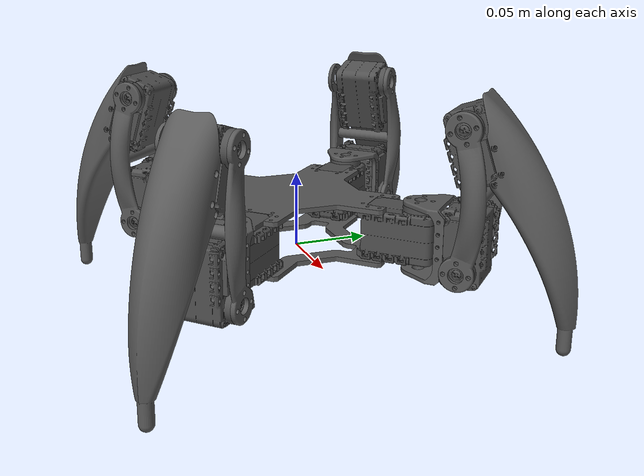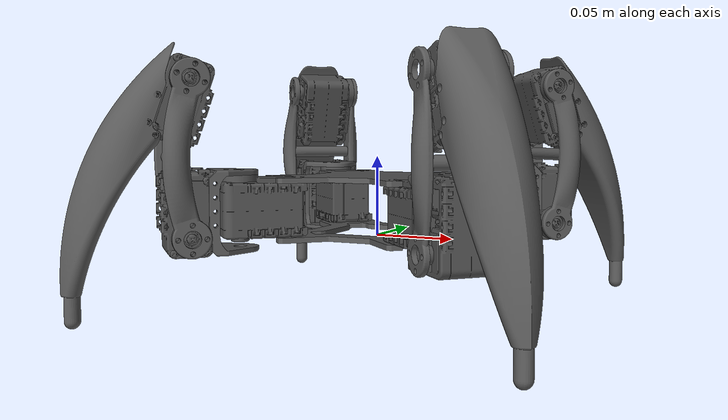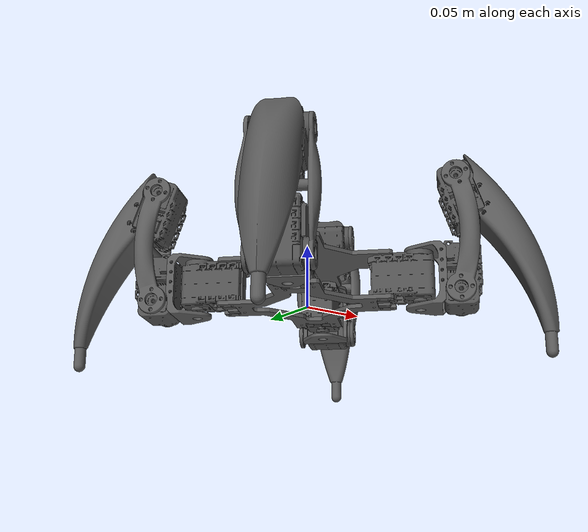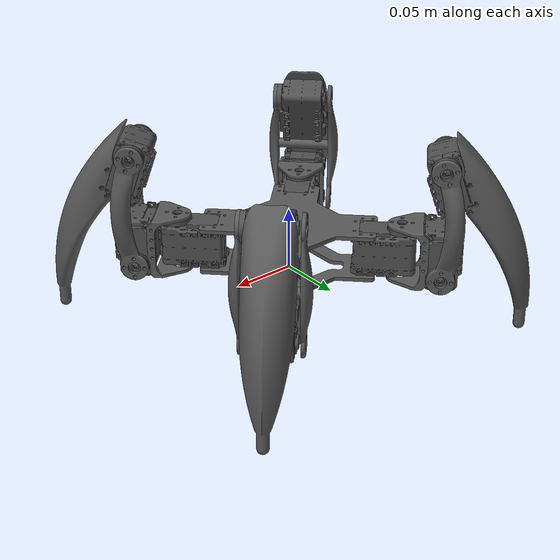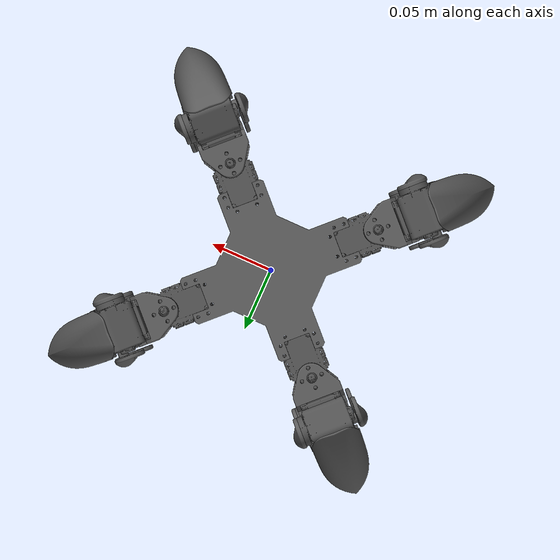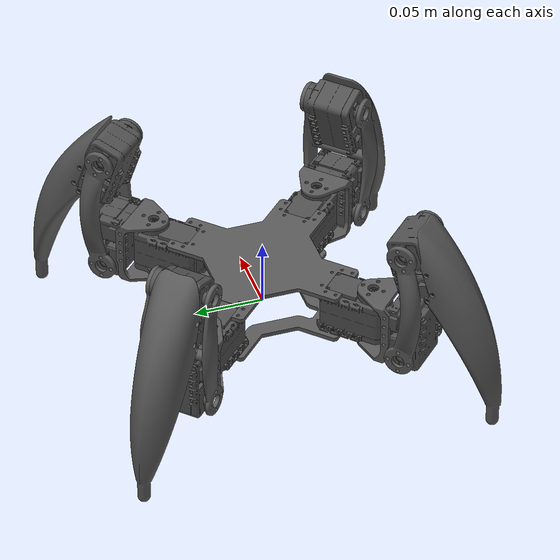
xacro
<?xml version="1.0" ?>
<robot name="quadrapod" xmlns:xacro="http://www.ros.org/wiki/xacro">

<xacro:include filename="$(find quadrapod_description)/urdf/materials.xacro" />
<xacro:include filename="$(find quadrapod_description)/urdf/quadrapod.trans" />
<xacro:include filename="$(find quadrapod_description)/urdf/quadrapod.gazebo" />

<!-- tibia tip end effector -->
<link name="tibia_eef_1"/>

<joint name="dummy_eef1" type="fixed">
    <parent link="tibia_v3_1"/>
    <child link="tibia_eef_1"/>
    <origin rpy="0 0 0" xyz="0.019893 0.043227 -0.108724"/>
</joint>

<link name="tibia_eef_2"/>

<joint name="dummy_eef2" type="fixed">
    <parent link="tibia_v3_2"/>
    <child link="tibia_eef_2"/>
    <origin rpy="0 0 0" xyz="-0.043227 0.019893 -0.108724"/>
</joint>

<link name="tibia_eef_3"/>

<joint name="dummy_eef3" type="fixed">
    <parent link="tibia_v3_3"/>
    <child link="tibia_eef_3"/>
    <origin rpy="0 0 0" xyz="0.019893 -0.043227 -0.108724"/>
</joint>

<link name="tibia_eef_4"/>

<joint name="dummy_eef4" type="fixed">
    <parent link="tibia_v3_4"/>
    <child link="tibia_eef_4"/>
    <origin rpy="0 0 0" xyz="-0.043227 -0.019893 -0.108724"/>
</joint>

<!-- end of tibia tip end effector -->

<link name="base_link">
  <inertial>
    <origin rpy="0 0 0" xyz="-3.131527398141724e-15 6.504656316614858e-17 0.0015874999999999993"/>
    <mass value="0.016210624643989514"/>
    <inertia ixx="1.8e-05" ixy="0.0" ixz="0.0" iyy="1.8e-05" iyz="-0.0" izz="3.6e-05"/>
  </inertial>
  <visual>
    <origin rpy="0 0 0" xyz="0 0 0"/>
    <geometry>
      <mesh filename="package://quadrapod_description/meshes/base_link.stl" scale="0.001 0.001 0.001"/>
    </geometry>
    <material name="powder_coat_dark_grey"/>
  </visual>
  <collision>
    <origin rpy="0 0 0" xyz="0 0 0"/>
    <geometry>
      <mesh filename="package://quadrapod_description/meshes/base_link.stl" scale="0.001 0.001 0.001"/>
    </geometry>
  </collision>
</link>

<link name="ax12a_v2_1">
  <inertial>
    <origin rpy="0 0 0" xyz="0.003358172989370682 0.02244916197825437 0.017128126001392945"/>
    <mass value="0.04556894168228744"/>
    <inertia ixx="1e-05" ixy="-3e-06" ixz="-0.0" iyy="1e-05" iyz="-0.0" izz="1.1e-05"/>
  </inertial>
  <visual>
    <origin rpy="0 0 0" xyz="-0.049405 -0.030313 -0.003175"/>
    <geometry>
      <mesh filename="package://quadrapod_description/meshes/ax12a_v2_1.stl" scale="0.001 0.001 0.001"/>
    </geometry>
    <material name="glossy_black"/>
  </visual>
  <collision>
    <origin rpy="0 0 0" xyz="-0.049405 -0.030313 -0.003175"/>
    <geometry>
      <mesh filename="package://quadrapod_description/meshes/ax12a_v2_1.stl" scale="0.001 0.001 0.001"/>
    </geometry>
  </collision>
</link>

<link name="top_plate_v3_1">
  <inertial>
    <origin rpy="0 0 0" xyz="-0.04940500000000193 -0.030313000000000093 0.0015874999999999986"/>
    <mass value="0.02791137131716288"/>
    <inertia ixx="2.2e-05" ixy="-0.0" ixz="-0.0" iyy="2.2e-05" iyz="-0.0" izz="4.3e-05"/>
  </inertial>
  <visual>
    <origin rpy="0 0 0" xyz="-0.049405 -0.030313 -0.035175"/>
    <geometry>
      <mesh filename="package://quadrapod_description/meshes/top_plate_v3_1.stl" scale="0.001 0.001 0.001"/>
    </geometry>
    <material name="powder_coat_dark_grey"/>
  </visual>
  <collision>
    <origin rpy="0 0 0" xyz="-0.049405 -0.030313 -0.035175"/>
    <geometry>
      <mesh filename="package://quadrapod_description/meshes/top_plate_v3_1.stl" scale="0.001 0.001 0.001"/>
    </geometry>
  </collision>
</link>

<link name="coxa_v3_1">
  <inertial>
    <origin rpy="0 0 0" xyz="0.006307697166824548 0.006307697166780014 -0.02156473485261959"/>
    <mass value="0.0059876100339638"/>
    <inertia ixx="3e-06" ixy="0.0" ixz="-0.0" iyy="3e-06" iyz="-0.0" izz="1e-06"/>
  </inertial>
  <visual>
    <origin rpy="0 0 0" xyz="-0.061602 -0.061602 -0.040175"/>
    <geometry>
      <mesh filename="package://quadrapod_description/meshes/coxa_v3_1.stl" scale="0.001 0.001 0.001"/>
    </geometry>
    <material name="powder_coat_dark_grey"/>
  </visual>
  <collision>
    <origin rpy="0 0 0" xyz="-0.061602 -0.061602 -0.040175"/>
    <geometry>
      <mesh filename="package://quadrapod_description/meshes/coxa_v3_1.stl" scale="0.001 0.001 0.001"/>
    </geometry>
  </collision>
</link>

<link name="ax12a_v2_2">
  <inertial>
    <origin rpy="0 0 0" xyz="-0.0009703775779082852 0.020061211330856032 0.005750862552334106"/>
    <mass value="0.04556894168228744"/>
    <inertia ixx="1.2e-05" ixy="1e-06" ixz="0.0" iyy="1.2e-05" iyz="-0.0" izz="7e-06"/>
  </inertial>
  <visual>
    <origin rpy="0 0 0" xyz="-0.08529 -0.062663 -0.01205"/>
    <geometry>
      <mesh filename="package://quadrapod_description/meshes/ax12a_v2_2.stl" scale="0.001 0.001 0.001"/>
    </geometry>
    <material name="glossy_black"/>
  </visual>
  <collision>
    <origin rpy="0 0 0" xyz="-0.08529 -0.062663 -0.01205"/>
    <geometry>
      <mesh filename="package://quadrapod_description/meshes/ax12a_v2_2.stl" scale="0.001 0.001 0.001"/>
    </geometry>
  </collision>
</link>

<link name="femur_v3_1">
  <inertial>
    <origin rpy="0 0 0" xyz="-0.010665286346567868 0.019022521708455142 0.045000612902674215"/>
    <mass value="0.017665404788512855"/>
    <inertia ixx="1.6e-05" ixy="4e-06" ixz="0.0" iyy="1.6e-05" iyz="0.0" izz="9e-06"/>
  </inertial>
  <visual>
    <origin rpy="0 0 0" xyz="-0.098372 -0.068673 -0.0053"/>
    <geometry>
      <mesh filename="package://quadrapod_description/meshes/femur_v3_1.stl" scale="0.001 0.001 0.001"/>
    </geometry>
    <material name="powder_coat_dark_grey"/>
  </visual>
  <collision>
    <origin rpy="0 0 0" xyz="-0.098372 -0.068673 -0.0053"/>
    <geometry>
      <mesh filename="package://quadrapod_description/meshes/femur_v3_1.stl" scale="0.001 0.001 0.001"/>
    </geometry>
  </collision>
</link>

<link name="ax12a_v2_3">
  <inertial>
    <origin rpy="0 0 0" xyz="-0.011246595732016501 0.016856993176747714 -0.011854636830040899"/>
    <mass value="0.04556894168228744"/>
    <inertia ixx="1.2e-05" ixy="1e-06" ixz="1e-06" iyy="1.2e-05" iyz="1e-06" izz="8e-06"/>
  </inertial>
  <visual>
    <origin rpy="0 0 0" xyz="-0.098372 -0.068673 -0.0953"/>
    <geometry>
      <mesh filename="package://quadrapod_description/meshes/ax12a_v2_3.stl" scale="0.001 0.001 0.001"/>
    </geometry>
    <material name="glossy_black"/>
  </visual>
  <collision>
    <origin rpy="0 0 0" xyz="-0.098372 -0.068673 -0.0953"/>
    <geometry>
      <mesh filename="package://quadrapod_description/meshes/ax12a_v2_3.stl" scale="0.001 0.001 0.001"/>
    </geometry>
  </collision>
</link>

<link name="tibia_v3_1">
  <inertial>
    <origin rpy="0 0 0" xyz="0.0029676224397089113 0.02630171402651535 -0.016467855089459284"/>
    <mass value="0.07868500125623075"/>
    <inertia ixx="9e-05" ixy="-5e-06" ixz="2.2e-05" iyy="9e-05" iyz="2.2e-05" izz="2.2e-05"/>
  </inertial>
  <visual>
    <origin rpy="0 0 0" xyz="-0.108278 -0.085651 -0.063699"/>
    <geometry>
      <mesh filename="package://quadrapod_description/meshes/tibia_v3_1.stl" scale="0.001 0.001 0.001"/>
    </geometry>
    <material name="powder_coat_dark_grey"/>
  </visual>
  <collision>
    <origin rpy="0 0 0" xyz="-0.108278 -0.085651 -0.063699"/>
    <geometry>
      <mesh filename="package://quadrapod_description/meshes/tibia_v3_1.stl" scale="0.001 0.001 0.001"/>
    </geometry>
  </collision>
</link>

<link name="ax12a_v2_4">
  <inertial>
    <origin rpy="0 0 0" xyz="-0.022449161978254396 0.003358172989370682 0.017128126001392973"/>
    <mass value="0.04556894168228744"/>
    <inertia ixx="1e-05" ixy="3e-06" ixz="0.0" iyy="1e-05" iyz="-0.0" izz="1.1e-05"/>
  </inertial>
  <visual>
    <origin rpy="0 0 0" xyz="0.030313 -0.049405 -0.003175"/>
    <geometry>
      <mesh filename="package://quadrapod_description/meshes/ax12a_v2_4.stl" scale="0.001 0.001 0.001"/>
    </geometry>
    <material name="glossy_black"/>
  </visual>
  <collision>
    <origin rpy="0 0 0" xyz="0.030313 -0.049405 -0.003175"/>
    <geometry>
      <mesh filename="package://quadrapod_description/meshes/ax12a_v2_4.stl" scale="0.001 0.001 0.001"/>
    </geometry>
  </collision>
</link>

<link name="coxa_v3_2">
  <inertial>
    <origin rpy="0 0 0" xyz="-0.006307697166780014 0.006307697166824548 -0.021564734852619536"/>
    <mass value="0.0059876100339638"/>
    <inertia ixx="3e-06" ixy="-0.0" ixz="0.0" iyy="3e-06" iyz="-0.0" izz="1e-06"/>
  </inertial>
  <visual>
    <origin rpy="0 0 0" xyz="0.061602 -0.061602 -0.040175"/>
    <geometry>
      <mesh filename="package://quadrapod_description/meshes/coxa_v3_2.stl" scale="0.001 0.001 0.001"/>
    </geometry>
    <material name="powder_coat_dark_grey"/>
  </visual>
  <collision>
    <origin rpy="0 0 0" xyz="0.061602 -0.061602 -0.040175"/>
    <geometry>
      <mesh filename="package://quadrapod_description/meshes/coxa_v3_2.stl" scale="0.001 0.001 0.001"/>
    </geometry>
  </collision>
</link>

<link name="ax12a_v2_5">
  <inertial>
    <origin rpy="0 0 0" xyz="-0.020061211330856102 -0.0009703775779084656 0.005750862552334151"/>
    <mass value="0.04556894168228744"/>
    <inertia ixx="1.2e-05" ixy="-1e-06" ixz="0.0" iyy="1.2e-05" iyz="0.0" izz="7e-06"/>
  </inertial>
  <visual>
    <origin rpy="0 0 0" xyz="0.062663 -0.08529 -0.01205"/>
    <geometry>
      <mesh filename="package://quadrapod_description/meshes/ax12a_v2_5.stl" scale="0.001 0.001 0.001"/>
    </geometry>
    <material name="glossy_black"/>
  </visual>
  <collision>
    <origin rpy="0 0 0" xyz="0.062663 -0.08529 -0.01205"/>
    <geometry>
      <mesh filename="package://quadrapod_description/meshes/ax12a_v2_5.stl" scale="0.001 0.001 0.001"/>
    </geometry>
  </collision>
</link>

<link name="femur_v3_2">
  <inertial>
    <origin rpy="0 0 0" xyz="-0.01902252170845524 -0.010665286346567895 0.045000612902674424"/>
    <mass value="0.017665404788512855"/>
    <inertia ixx="1.6e-05" ixy="-4e-06" ixz="-0.0" iyy="1.6e-05" iyz="0.0" izz="9e-06"/>
  </inertial>
  <visual>
    <origin rpy="0 0 0" xyz="0.068673 -0.098372 -0.0053"/>
    <geometry>
      <mesh filename="package://quadrapod_description/meshes/femur_v3_2.stl" scale="0.001 0.001 0.001"/>
    </geometry>
    <material name="powder_coat_dark_grey"/>
  </visual>
  <collision>
    <origin rpy="0 0 0" xyz="0.068673 -0.098372 -0.0053"/>
    <geometry>
      <mesh filename="package://quadrapod_description/meshes/femur_v3_2.stl" scale="0.001 0.001 0.001"/>
    </geometry>
  </collision>
</link>

<link name="ax12a_v2_6">
  <inertial>
    <origin rpy="0 0 0" xyz="-0.01685699317674802 -0.011246595732016737 -0.011854636830040413"/>
    <mass value="0.04556894168228744"/>
    <inertia ixx="1.2e-05" ixy="-1e-06" ixz="-1e-06" iyy="1.2e-05" iyz="1e-06" izz="8e-06"/>
  </inertial>
  <visual>
    <origin rpy="0 0 0" xyz="0.068673 -0.098372 -0.0953"/>
    <geometry>
      <mesh filename="package://quadrapod_description/meshes/ax12a_v2_6.stl" scale="0.001 0.001 0.001"/>
    </geometry>
    <material name="glossy_black"/>
  </visual>
  <collision>
    <origin rpy="0 0 0" xyz="0.068673 -0.098372 -0.0953"/>
    <geometry>
      <mesh filename="package://quadrapod_description/meshes/ax12a_v2_6.stl" scale="0.001 0.001 0.001"/>
    </geometry>
  </collision>
</link>

<link name="tibia_v3_2">
  <inertial>
    <origin rpy="0 0 0" xyz="-0.026301714026515224 0.002967622439708814 -0.016467855089458826"/>
    <mass value="0.07868500125623075"/>
    <inertia ixx="9e-05" ixy="5e-06" ixz="-2.2e-05" iyy="9e-05" iyz="2.2e-05" izz="2.2e-05"/>
  </inertial>
  <visual>
    <origin rpy="0 0 0" xyz="0.085651 -0.108278 -0.063699"/>
    <geometry>
      <mesh filename="package://quadrapod_description/meshes/tibia_v3_2.stl" scale="0.001 0.001 0.001"/>
    </geometry>
    <material name="powder_coat_dark_grey"/>
  </visual>
  <collision>
    <origin rpy="0 0 0" xyz="0.085651 -0.108278 -0.063699"/>
    <geometry>
      <mesh filename="package://quadrapod_description/meshes/tibia_v3_2.stl" scale="0.001 0.001 0.001"/>
    </geometry>
  </collision>
</link>

<link name="ax12a_v2_7">
  <inertial>
    <origin rpy="0 0 0" xyz="0.003357161978254433 -0.022450172989370666 0.017128126001392973"/>
    <mass value="0.04556894168228744"/>
    <inertia ixx="1e-05" ixy="3e-06" ixz="-0.0" iyy="1e-05" iyz="0.0" izz="1.1e-05"/>
  </inertial>
  <visual>
    <origin rpy="0 0 0" xyz="-0.049405 0.030313 -0.003175"/>
    <geometry>
      <mesh filename="package://quadrapod_description/meshes/ax12a_v2_7.stl" scale="0.001 0.001 0.001"/>
    </geometry>
    <material name="glossy_black"/>
  </visual>
  <collision>
    <origin rpy="0 0 0" xyz="-0.049405 0.030313 -0.003175"/>
    <geometry>
      <mesh filename="package://quadrapod_description/meshes/ax12a_v2_7.stl" scale="0.001 0.001 0.001"/>
    </geometry>
  </collision>
</link>

<link name="coxa_v3_3">
  <inertial>
    <origin rpy="0 0 0" xyz="0.006307697166780223 -0.006307697166824687 -0.021564734852620168"/>
    <mass value="0.0059876100339638"/>
    <inertia ixx="3e-06" ixy="-0.0" ixz="-0.0" iyy="3e-06" iyz="0.0" izz="1e-06"/>
  </inertial>
  <visual>
    <origin rpy="0 0 0" xyz="-0.061602 0.061602 -0.040175"/>
    <geometry>
      <mesh filename="package://quadrapod_description/meshes/coxa_v3_3.stl" scale="0.001 0.001 0.001"/>
    </geometry>
    <material name="powder_coat_dark_grey"/>
  </visual>
  <collision>
    <origin rpy="0 0 0" xyz="-0.061602 0.061602 -0.040175"/>
    <geometry>
      <mesh filename="package://quadrapod_description/meshes/coxa_v3_3.stl" scale="0.001 0.001 0.001"/>
    </geometry>
  </collision>
</link>

<link name="ax12a_v2_8">
  <inertial>
    <origin rpy="0 0 0" xyz="-0.0009693665667916268 -0.02006222234197265 0.005750862552333385"/>
    <mass value="0.04556894168228744"/>
    <inertia ixx="1.2e-05" ixy="-1e-06" ixz="0.0" iyy="1.2e-05" iyz="0.0" izz="7e-06"/>
  </inertial>
  <visual>
    <origin rpy="0 0 0" xyz="-0.08529 0.062663 -0.01205"/>
    <geometry>
      <mesh filename="package://quadrapod_description/meshes/ax12a_v2_8.stl" scale="0.001 0.001 0.001"/>
    </geometry>
    <material name="glossy_black"/>
  </visual>
  <collision>
    <origin rpy="0 0 0" xyz="-0.08529 0.062663 -0.01205"/>
    <geometry>
      <mesh filename="package://quadrapod_description/meshes/ax12a_v2_8.stl" scale="0.001 0.001 0.001"/>
    </geometry>
  </collision>
</link>

<link name="femur_v3_3">
  <inertial>
    <origin rpy="0 0 0" xyz="-0.010676478291544167 -0.0190337136534324 0.045000612902673424"/>
    <mass value="0.017665404788512855"/>
    <inertia ixx="1.6e-05" ixy="-4e-06" ixz="0.0" iyy="1.6e-05" iyz="-0.0" izz="9e-06"/>
  </inertial>
  <visual>
    <origin rpy="0 0 0" xyz="-0.098372 0.068673 -0.0053"/>
    <geometry>
      <mesh filename="package://quadrapod_description/meshes/femur_v3_3.stl" scale="0.001 0.001 0.001"/>
    </geometry>
    <material name="powder_coat_dark_grey"/>
  </visual>
  <collision>
    <origin rpy="0 0 0" xyz="-0.098372 0.068673 -0.0053"/>
    <geometry>
      <mesh filename="package://quadrapod_description/meshes/femur_v3_3.stl" scale="0.001 0.001 0.001"/>
    </geometry>
  </collision>
</link>

<link name="ax12a_v2_9">
  <inertial>
    <origin rpy="0 0 0" xyz="-0.011247554497774204 -0.016856034410990497 -0.011855090507679161"/>
    <mass value="0.04556894168228744"/>
    <inertia ixx="1.2e-05" ixy="-1e-06" ixz="1e-06" iyy="1.2e-05" iyz="-1e-06" izz="8e-06"/>
  </inertial>
  <visual>
    <origin rpy="0 0 0" xyz="-0.098372 0.068673 -0.0953"/>
    <geometry>
      <mesh filename="package://quadrapod_description/meshes/ax12a_v2_9.stl" scale="0.001 0.001 0.001"/>
    </geometry>
    <material name="glossy_black"/>
  </visual>
  <collision>
    <origin rpy="0 0 0" xyz="-0.098372 0.068673 -0.0953"/>
    <geometry>
      <mesh filename="package://quadrapod_description/meshes/ax12a_v2_9.stl" scale="0.001 0.001 0.001"/>
    </geometry>
  </collision>
</link>

<link name="tibia_v3_3">
  <inertial>
    <origin rpy="0 0 0" xyz="0.002967607245328463 -0.026301729220895284 -0.016467855089458597"/>
    <mass value="0.07868500125623075"/>
    <inertia ixx="9e-05" ixy="5e-06" ixz="2.2e-05" iyy="9e-05" iyz="-2.2e-05" izz="2.2e-05"/>
  </inertial>
  <visual>
    <origin rpy="0 0 0" xyz="-0.108278 0.085651 -0.063699"/>
    <geometry>
      <mesh filename="package://quadrapod_description/meshes/tibia_v3_3.stl" scale="0.001 0.001 0.001"/>
    </geometry>
    <material name="powder_coat_dark_grey"/>
  </visual>
  <collision>
    <origin rpy="0 0 0" xyz="-0.108278 0.085651 -0.063699"/>
    <geometry>
      <mesh filename="package://quadrapod_description/meshes/tibia_v3_3.stl" scale="0.001 0.001 0.001"/>
    </geometry>
  </collision>
</link>

<link name="ax12a_v2_10">
  <inertial>
    <origin rpy="0 0 0" xyz="-0.010960172989370826 -0.022273161978254432 0.017128126001392973"/>
    <mass value="0.04556894168228744"/>
    <inertia ixx="1e-05" ixy="-3e-06" ixz="0.0" iyy="1e-05" iyz="0.0" izz="1.1e-05"/>
  </inertial>
  <visual>
    <origin rpy="0 0 0" xyz="0.041803 0.030489 -0.003175"/>
    <geometry>
      <mesh filename="package://quadrapod_description/meshes/ax12a_v2_10.stl" scale="0.001 0.001 0.001"/>
    </geometry>
    <material name="glossy_black"/>
  </visual>
  <collision>
    <origin rpy="0 0 0" xyz="0.041803 0.030489 -0.003175"/>
    <geometry>
      <mesh filename="package://quadrapod_description/meshes/ax12a_v2_10.stl" scale="0.001 0.001 0.001"/>
    </geometry>
  </collision>
</link>

<link name="coxa_v3_4">
  <inertial>
    <origin rpy="0 0 0" xyz="-0.006307697166824798 -0.006307697166780028 -0.021564734852619477"/>
    <mass value="0.0059876100339638"/>
    <inertia ixx="3e-06" ixy="0.0" ixz="0.0" iyy="3e-06" iyz="0.0" izz="1e-06"/>
  </inertial>
  <visual>
    <origin rpy="0 0 0" xyz="0.061602 0.061602 -0.040175"/>
    <geometry>
      <mesh filename="package://quadrapod_description/meshes/coxa_v3_4.stl" scale="0.001 0.001 0.001"/>
    </geometry>
    <material name="powder_coat_dark_grey"/>
  </visual>
  <collision>
    <origin rpy="0 0 0" xyz="0.061602 0.061602 -0.040175"/>
    <geometry>
      <mesh filename="package://quadrapod_description/meshes/coxa_v3_4.stl" scale="0.001 0.001 0.001"/>
    </geometry>
  </collision>
</link>

<link name="ax12a_v2_11">
  <inertial>
    <origin rpy="0 0 0" xyz="-0.020062222341972455 0.0009693665667922235 0.005750862552334141"/>
    <mass value="0.04556894168228744"/>
    <inertia ixx="1.2e-05" ixy="1e-06" ixz="0.0" iyy="1.2e-05" iyz="-0.0" izz="7e-06"/>
  </inertial>
  <visual>
    <origin rpy="0 0 0" xyz="0.062663 0.08529 -0.01205"/>
    <geometry>
      <mesh filename="package://quadrapod_description/meshes/ax12a_v2_11.stl" scale="0.001 0.001 0.001"/>
    </geometry>
    <material name="glossy_black"/>
  </visual>
  <collision>
    <origin rpy="0 0 0" xyz="0.062663 0.08529 -0.01205"/>
    <geometry>
      <mesh filename="package://quadrapod_description/meshes/ax12a_v2_11.stl" scale="0.001 0.001 0.001"/>
    </geometry>
  </collision>
</link>

<link name="femur_v3_4">
  <inertial>
    <origin rpy="0 0 0" xyz="-0.01903371365343258 0.010676478291544986 0.045000612902674555"/>
    <mass value="0.017665404788512855"/>
    <inertia ixx="1.6e-05" ixy="4e-06" ixz="-0.0" iyy="1.6e-05" iyz="-0.0" izz="9e-06"/>
  </inertial>
  <visual>
    <origin rpy="0 0 0" xyz="0.068673 0.098372 -0.0053"/>
    <geometry>
      <mesh filename="package://quadrapod_description/meshes/femur_v3_4.stl" scale="0.001 0.001 0.001"/>
    </geometry>
    <material name="powder_coat_dark_grey"/>
  </visual>
  <collision>
    <origin rpy="0 0 0" xyz="0.068673 0.098372 -0.0053"/>
    <geometry>
      <mesh filename="package://quadrapod_description/meshes/femur_v3_4.stl" scale="0.001 0.001 0.001"/>
    </geometry>
  </collision>
</link>

<link name="ax12a_v2_12">
  <inertial>
    <origin rpy="0 0 0" xyz="-0.016856034410990803 0.011247554497773982 -0.011855090507679189"/>
    <mass value="0.04556894168228744"/>
    <inertia ixx="1.2e-05" ixy="1e-06" ixz="-1e-06" iyy="1.2e-05" iyz="-1e-06" izz="8e-06"/>
  </inertial>
  <visual>
    <origin rpy="0 0 0" xyz="0.068673 0.098372 -0.0953"/>
    <geometry>
      <mesh filename="package://quadrapod_description/meshes/ax12a_v2_12.stl" scale="0.001 0.001 0.001"/>
    </geometry>
    <material name="glossy_black"/>
  </visual>
  <collision>
    <origin rpy="0 0 0" xyz="0.068673 0.098372 -0.0953"/>
    <geometry>
      <mesh filename="package://quadrapod_description/meshes/ax12a_v2_12.stl" scale="0.001 0.001 0.001"/>
    </geometry>
  </collision>
</link>

<link name="tibia_v3_4">
  <inertial>
    <origin rpy="0 0 0" xyz="-0.026301729220895548 -0.0029676072453285463 -0.016467855089458798"/>
    <mass value="0.07868500125623075"/>
    <inertia ixx="9e-05" ixy="-5e-06" ixz="-2.2e-05" iyy="9e-05" iyz="-2.2e-05" izz="2.2e-05"/>
  </inertial>
  <visual>
    <origin rpy="0 0 0" xyz="0.085651 0.108278 -0.063699"/>
    <geometry>
      <mesh filename="package://quadrapod_description/meshes/tibia_v3_4.stl" scale="0.001 0.001 0.001"/>
    </geometry>
    <material name="powder_coat_dark_grey"/>
  </visual>
  <collision>
    <origin rpy="0 0 0" xyz="0.085651 0.108278 -0.063699"/>
    <geometry>
      <mesh filename="package://quadrapod_description/meshes/tibia_v3_4.stl" scale="0.001 0.001 0.001"/>
    </geometry>
  </collision>
</link>

<joint name="Rigid1" type="fixed">
  <origin rpy="0 0 0" xyz="0.049405 0.030313 0.003175"/>
  <parent link="base_link"/>
  <child link="ax12a_v2_1"/>
</joint>

<joint name="Rigid2" type="fixed">
  <origin rpy="0 0 0" xyz="0.0 0.0 0.032"/>
  <parent link="ax12a_v2_1"/>
  <child link="top_plate_v3_1"/>
</joint>

<joint name="coxa1" type="revolute">
  <origin rpy="0 0 0" xyz="0.012197 0.031289 0.037"/>
  <parent link="ax12a_v2_1"/>
  <child link="coxa_v3_1"/>
  <axis xyz="-0.0 -0.0 1.0"/>
  <limit effort="100" lower="-1.48353" upper="1.48353" velocity="100"/>
</joint>

<joint name="Rigid4" type="fixed">
  <origin rpy="0 0 0" xyz="0.023688 0.001061 -0.028125"/>
  <parent link="coxa_v3_1"/>
  <child link="ax12a_v2_2"/>
</joint>

<joint name="femur1" type="revolute">
  <origin rpy="0 0 0" xyz="0.013082 0.00601 -0.00675"/>
  <parent link="ax12a_v2_2"/>
  <child link="femur_v3_1"/>
  <axis xyz="0.707107 -0.707107 0.0"/>
  <limit effort="100" lower="-4.101524" upper="1.308997" velocity="100"/>
</joint>

<joint name="tibia1" type="revolute">
  <origin rpy="0 0 0" xyz="0.0 0.0 0.09"/>
  <parent link="femur_v3_1"/>
  <child link="ax12a_v2_3"/>
  <axis xyz="0.707107 -0.707107 0.0"/>
  <limit effort="100" lower="-0.174533" upper="5.148721" velocity="100"/>
</joint>

<joint name="Rigid7" type="fixed">
  <origin rpy="0 0 0" xyz="0.009906 0.016978 -0.031601"/>
  <parent link="ax12a_v2_3"/>
  <child link="tibia_v3_1"/>
</joint>

<joint name="Rigid8" type="fixed">
  <origin rpy="0 0 0" xyz="-0.030313 0.049405 0.003175"/>
  <parent link="base_link"/>
  <child link="ax12a_v2_4"/>
</joint>

<joint name="coxa2" type="revolute">
  <origin rpy="0 0 0" xyz="-0.031289 0.012197 0.037"/>
  <parent link="ax12a_v2_4"/>
  <child link="coxa_v3_2"/>
  <axis xyz="0.0 -0.0 1.0"/>
  <limit effort="100" lower="-1.48353" upper="1.48353" velocity="100"/>
</joint>

<joint name="Rigid10" type="fixed">
  <origin rpy="0 0 0" xyz="-0.001061 0.023688 -0.028125"/>
  <parent link="coxa_v3_2"/>
  <child link="ax12a_v2_5"/>
</joint>

<joint name="femur2" type="revolute">
  <origin rpy="0 0 0" xyz="-0.00601 0.013082 -0.00675"/>
  <parent link="ax12a_v2_5"/>
  <child link="femur_v3_2"/>
  <axis xyz="0.707107 0.707107 0.0"/>
  <limit effort="100" lower="-4.101524" upper="0.523599" velocity="100"/>
</joint>

<joint name="tibia2" type="revolute">
  <origin rpy="0 0 0" xyz="0.0 0.0 0.09"/>
  <parent link="femur_v3_2"/>
  <child link="ax12a_v2_6"/>
  <axis xyz="0.707107 0.707107 0.0"/>
  <limit effort="100" lower="-0.174533" upper="5.148721" velocity="100"/>
</joint>

<joint name="Rigid13" type="fixed">
  <origin rpy="0 0 0" xyz="-0.016978 0.009906 -0.031601"/>
  <parent link="ax12a_v2_6"/>
  <child link="tibia_v3_2"/>
</joint>

<joint name="Rigid14" type="fixed">
  <origin rpy="0 0 0" xyz="0.049405 -0.030313 0.003175"/>
  <parent link="base_link"/>
  <child link="ax12a_v2_7"/>
</joint>

<joint name="coxa3" type="revolute">
  <origin rpy="0 0 0" xyz="0.012197 -0.031289 0.037"/>
  <parent link="ax12a_v2_7"/>
  <child link="coxa_v3_3"/>
  <axis xyz="-0.0 0.0 1.0"/>
  <limit effort="100" lower="-1.48353" upper="1.48353" velocity="100"/>
</joint>

<joint name="Rigid16" type="fixed">
  <origin rpy="0 0 0" xyz="0.023688 -0.001061 -0.028125"/>
  <parent link="coxa_v3_3"/>
  <child link="ax12a_v2_8"/>
</joint>

<joint name="femur3" type="revolute">
  <origin rpy="0 0 0" xyz="0.013082 -0.00601 -0.00675"/>
  <parent link="ax12a_v2_8"/>
  <child link="femur_v3_3"/>
  <axis xyz="0.707107 0.707107 0.0"/>
  <limit effort="100" lower="-0.523599" upper="4.014257" velocity="100"/>
</joint>

<joint name="tibia3" type="revolute">
  <origin rpy="0 0 0" xyz="0.0 0.0 0.09"/>
  <parent link="femur_v3_3"/>
  <child link="ax12a_v2_9"/>
  <axis xyz="-0.707107 -0.707107 -0.0"/>
  <limit effort="100" lower="-0.174533" upper="5.148721" velocity="100"/>
</joint>

<joint name="Rigid19" type="fixed">
  <origin rpy="0 0 0" xyz="0.009906 -0.016978 -0.031601"/>
  <parent link="ax12a_v2_9"/>
  <child link="tibia_v3_3"/>
</joint>

<joint name="Rigid20" type="fixed">
  <origin rpy="0 0 0" xyz="-0.041803 -0.030489 0.003175"/>
  <parent link="base_link"/>
  <child link="ax12a_v2_10"/>
</joint>

<joint name="coxa4" type="revolute">
  <origin rpy="0 0 0" xyz="-0.019799 -0.031113 0.037"/>
  <parent link="ax12a_v2_10"/>
  <child link="coxa_v3_4"/>
  <axis xyz="0.0 0.0 1.0"/>
  <limit effort="100" lower="-1.48353" upper="1.48353" velocity="100"/>
</joint>

<joint name="Rigid22" type="fixed">
  <origin rpy="0 0 0" xyz="-0.001061 -0.023688 -0.028125"/>
  <parent link="coxa_v3_4"/>
  <child link="ax12a_v2_11"/>
</joint>

<joint name="femur4" type="revolute">
  <origin rpy="0 0 0" xyz="-0.00601 -0.013082 -0.00675"/>
  <parent link="ax12a_v2_11"/>
  <child link="femur_v3_4"/>
  <axis xyz="0.707107 -0.707107 0.0"/>
  <limit effort="100" lower="-0.523599" upper="4.014257" velocity="100"/>
</joint>

<joint name="tibia4" type="revolute">
  <origin rpy="0 0 0" xyz="0.0 0.0 0.09"/>
  <parent link="femur_v3_4"/>
  <child link="ax12a_v2_12"/>
  <axis xyz="-0.707107 0.707107 -0.0"/>
  <limit effort="100" lower="-0.174533" upper="5.148721" velocity="100"/>
</joint>

<joint name="Rigid25" type="fixed">
  <origin rpy="0 0 0" xyz="-0.016978 -0.009906 -0.031601"/>
  <parent link="ax12a_v2_12"/>
  <child link="tibia_v3_4"/>
</joint>

</robot>

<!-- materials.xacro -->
<robot name="quadrapod" xmlns:xacro="http://www.ros.org/wiki/xacro" >

<material name="silver_default">
  <color rgba="0.700 0.700 0.700 1.000"/>
</material>
<material name="powder_coat_dark_grey">
  <color rgba="0.34901960784313724 0.34901960784313724 0.34901960784313724 1.0"/>
</material>
<material name="glossy_black">
  <color rgba="0.3137254901960784 0.3137254901960784 0.3137254901960784 1.0"/>
</material>
<material name="abs_white">
  <color rgba="0.9647058823529412 0.9647058823529412 0.9529411764705882 1.0"/>
</material>

</robot>

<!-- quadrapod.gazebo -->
<robot name="quadrapod" xmlns:xacro="http://www.ros.org/wiki/xacro" >

<xacro:property name="body_color" value="Gazebo/Silver" />

<!-- updated from fusion2urdf -->
<gazebo>
  <plugin name="gazebo_ros_control" filename="libgazebo_ros_control.so">
    <robotNamespace>/quadrapod</robotNamespace>
  </plugin>
</gazebo>

<gazebo reference="base_link">
  <material>${body_color}</material>
  <mu1>0.2</mu1>
  <mu2>0.2</mu2>
  <selfCollide>true</selfCollide>
  <gravity>true</gravity>
</gazebo>

<gazebo reference="ax12a_v2_1">
  <material>${body_color}</material>
  <mu1>0.2</mu1>
  <mu2>0.2</mu2>
  <selfCollide>true</selfCollide>
</gazebo>

<gazebo reference="top_plate_v3_1">
  <material>${body_color}</material>
  <mu1>0.2</mu1>
  <mu2>0.2</mu2>
  <selfCollide>true</selfCollide>
</gazebo>

<gazebo reference="coxa_v3_1">
  <material>${body_color}</material>
  <mu1>0.2</mu1>
  <mu2>0.2</mu2>
  <selfCollide>true</selfCollide>
</gazebo>

<gazebo reference="ax12a_v2_2">
  <material>${body_color}</material>
  <mu1>0.2</mu1>
  <mu2>0.2</mu2>
  <selfCollide>true</selfCollide>
</gazebo>

<gazebo reference="femur_v3_1">
  <material>${body_color}</material>
  <mu1>0.2</mu1>
  <mu2>0.2</mu2>
  <selfCollide>true</selfCollide>
</gazebo>

<gazebo reference="ax12a_v2_3">
  <material>${body_color}</material>
  <mu1>0.2</mu1>
  <mu2>0.2</mu2>
  <selfCollide>true</selfCollide>
</gazebo>

<gazebo reference="tibia_v3_1">
  <material>${body_color}</material>
  <mu1>0.2</mu1>
  <mu2>0.2</mu2>
  <selfCollide>true</selfCollide>
</gazebo>

<gazebo reference="ax12a_v2_4">
  <material>${body_color}</material>
  <mu1>0.2</mu1>
  <mu2>0.2</mu2>
  <selfCollide>true</selfCollide>
</gazebo>

<gazebo reference="coxa_v3_2">
  <material>${body_color}</material>
  <mu1>0.2</mu1>
  <mu2>0.2</mu2>
  <selfCollide>true</selfCollide>
</gazebo>

<gazebo reference="ax12a_v2_5">
  <material>${body_color}</material>
  <mu1>0.2</mu1>
  <mu2>0.2</mu2>
  <selfCollide>true</selfCollide>
</gazebo>

<gazebo reference="femur_v3_2">
  <material>${body_color}</material>
  <mu1>0.2</mu1>
  <mu2>0.2</mu2>
  <selfCollide>true</selfCollide>
</gazebo>

<gazebo reference="ax12a_v2_6">
  <material>${body_color}</material>
  <mu1>0.2</mu1>
  <mu2>0.2</mu2>
  <selfCollide>true</selfCollide>
</gazebo>

<gazebo reference="tibia_v3_2">
  <material>${body_color}</material>
  <mu1>0.2</mu1>
  <mu2>0.2</mu2>
  <selfCollide>true</selfCollide>
</gazebo>

<gazebo reference="ax12a_v2_7">
  <material>${body_color}</material>
  <mu1>0.2</mu1>
  <mu2>0.2</mu2>
  <selfCollide>true</selfCollide>
</gazebo>

<gazebo reference="coxa_v3_3">
  <material>${body_color}</material>
  <mu1>0.2</mu1>
  <mu2>0.2</mu2>
  <selfCollide>true</selfCollide>
</gazebo>

<gazebo reference="ax12a_v2_8">
  <material>${body_color}</material>
  <mu1>0.2</mu1>
  <mu2>0.2</mu2>
  <selfCollide>true</selfCollide>
</gazebo>

<gazebo reference="femur_v3_3">
  <material>${body_color}</material>
  <mu1>0.2</mu1>
  <mu2>0.2</mu2>
  <selfCollide>true</selfCollide>
</gazebo>

<gazebo reference="ax12a_v2_9">
  <material>${body_color}</material>
  <mu1>0.2</mu1>
  <mu2>0.2</mu2>
  <selfCollide>true</selfCollide>
</gazebo>

<gazebo reference="tibia_v3_3">
  <material>${body_color}</material>
  <mu1>0.2</mu1>
  <mu2>0.2</mu2>
  <selfCollide>true</selfCollide>
</gazebo>

<gazebo reference="ax12a_v2_10">
  <material>${body_color}</material>
  <mu1>0.2</mu1>
  <mu2>0.2</mu2>
  <selfCollide>true</selfCollide>
</gazebo>

<gazebo reference="coxa_v3_4">
  <material>${body_color}</material>
  <mu1>0.2</mu1>
  <mu2>0.2</mu2>
  <selfCollide>true</selfCollide>
</gazebo>

<gazebo reference="ax12a_v2_11">
  <material>${body_color}</material>
  <mu1>0.2</mu1>
  <mu2>0.2</mu2>
  <selfCollide>true</selfCollide>
</gazebo>

<gazebo reference="femur_v3_4">
  <material>${body_color}</material>
  <mu1>0.2</mu1>
  <mu2>0.2</mu2>
  <selfCollide>true</selfCollide>
</gazebo>

<gazebo reference="ax12a_v2_12">
  <material>${body_color}</material>
  <mu1>0.2</mu1>
  <mu2>0.2</mu2>
  <selfCollide>true</selfCollide>
</gazebo>

<gazebo reference="tibia_v3_4">
  <material>${body_color}</material>
  <mu1>0.2</mu1>
  <mu2>0.2</mu2>
  <selfCollide>true</selfCollide>
</gazebo>

</robot>
